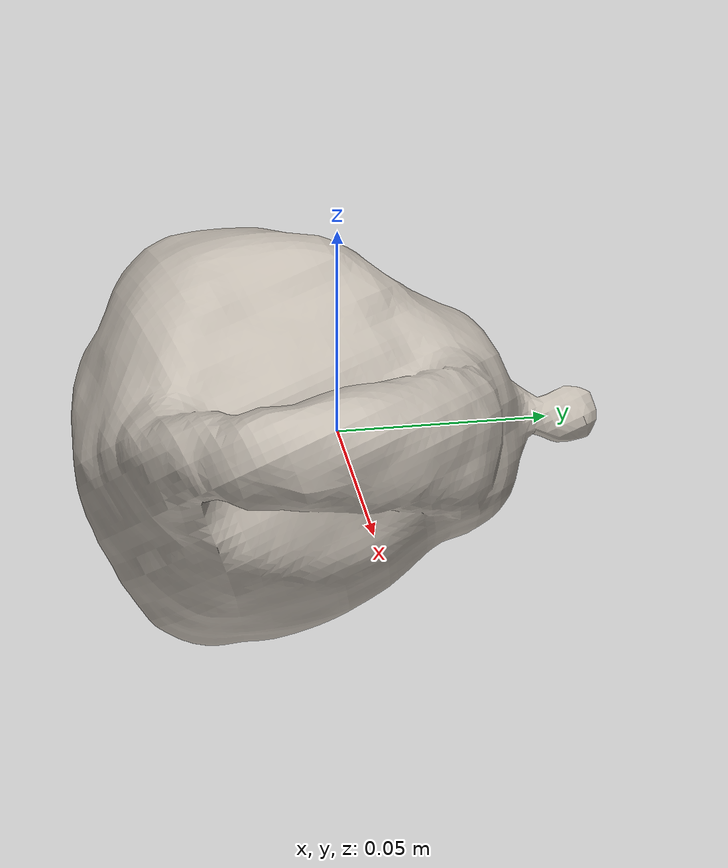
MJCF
<mujoco model="kettle">
  <asset>
    <mesh file="meshes/milk.msh" name="kettle_mesh" scale="0.9 0.9 0.9"/>
    <mesh file="meshes/kettle_with_tex.obj" name="kettle_visual_mesh" scale="0.2 0.2 0.2"/>
    <texture file="meshes/kettle_tex.png" name="tex-ceramic" type="2d"/>
    <material name="ceramic" reflectance="0.5" texrepeat="1 1" texture="tex-ceramic" texuniform="true"/>
  </asset>
  <worldbody>
    <body>
      <body name="object">
        <geom pos="0 0 0" mesh="kettle_mesh" type="mesh" solimp="0.998 0.998 0.001" solref="0.001 1" density="100" friction="0.95 0.3 0.1" group="0" condim="4" rgba="0 0 0 0"/>
        <geom pos="0 0 0" mesh="kettle_visual_mesh" type="mesh" material="ceramic" contype="0" conaffinity="0" group="1"/>
      </body>
      <site rgba="0 0 0 0" size="0.005" pos="0 0 -0.085" name="bottom_site"/>
      <site rgba="0 0 0 0" size="0.005" pos="0 0 0.075" name="top_site"/>
      <site rgba="0 0 0 0" size="0.005" pos="0.025 0.025 0" name="horizontal_radius_site"/>
    </body>
  </worldbody>
</mujoco>
